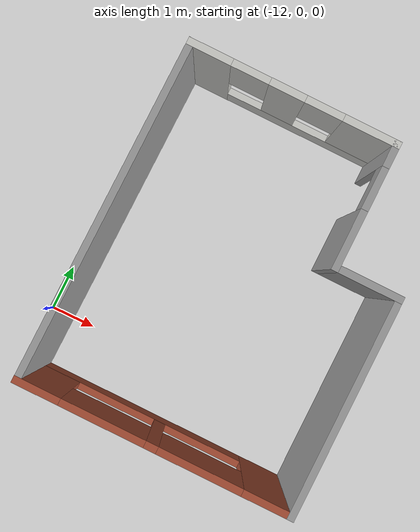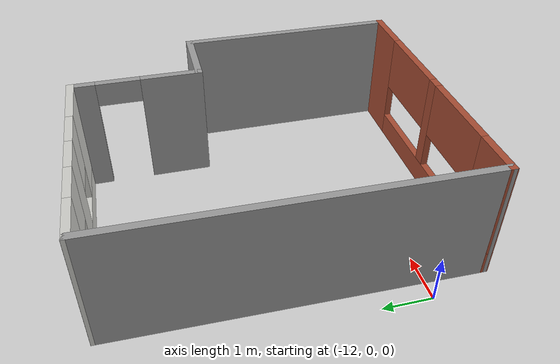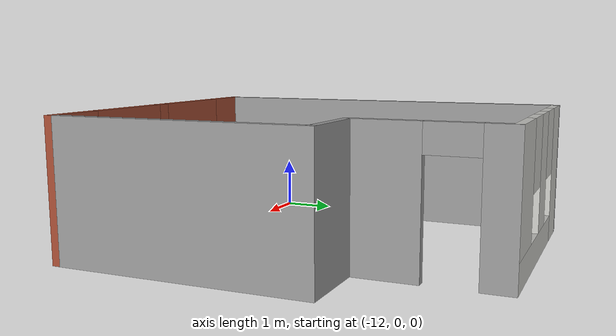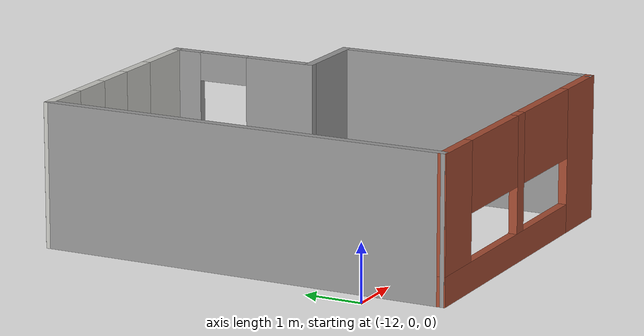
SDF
<?xml version='1.0'?>
<sdf version='1.6'>
  <model name='Building'>
    <pose frame=''>-8.66418 2.3858 0 0 -0 0</pose>
    <link name='Wall_1'>
      <pose frame=''>-0.616625 3.5994 0 0 -0 0</pose>
      <visual name='Wall_1_Visual_0'>
        <pose frame=''>-1.77601 0 1.25 0 -0 0</pose>
        <geometry>
          <box>
            <size>0.947972 0.15 2.5</size>
          </box>
        </geometry>
        <material>
          <script>
            <uri>file://media/materials/scripts/gazebo.material</uri>
            <name>Gazebo/CeilingTiled</name>
          </script>
          <ambient>1 0.976471 0.964706 1</ambient>
        </material>
        <meta>
          <layer>0</layer>
        </meta>
      </visual>
      <collision name='Wall_1_Collision_0'>
        <geometry>
          <box>
            <size>0.947972 0.15 2.5</size>
          </box>
        </geometry>
        <pose frame=''>-1.77601 0 1.25 0 -0 0</pose>
      </collision>
      <visual name='Wall_1_Visual_1'>
        <pose frame=''>0.473986 0 0.25 0 -0 0</pose>
        <geometry>
          <box>
            <size>3.55203 0.15 0.5</size>
          </box>
        </geometry>
        <material>
          <script>
            <uri>file://media/materials/scripts/gazebo.material</uri>
            <name>Gazebo/CeilingTiled</name>
          </script>
          <ambient>1 0.976471 0.964706 1</ambient>
        </material>
        <meta>
          <layer>0</layer>
        </meta>
      </visual>
      <collision name='Wall_1_Collision_1'>
        <geometry>
          <box>
            <size>3.55203 0.15 0.5</size>
          </box>
        </geometry>
        <pose frame=''>0.473986 0 0.25 0 -0 0</pose>
      </collision>
      <visual name='Wall_1_Visual_2'>
        <pose frame=''>-0.123721 0 1.5 0 -0 0</pose>
        <geometry>
          <box>
            <size>0.756615 0.15 2</size>
          </box>
        </geometry>
        <material>
          <script>
            <uri>file://media/materials/scripts/gazebo.material</uri>
            <name>Gazebo/CeilingTiled</name>
          </script>
          <ambient>1 0.976471 0.964706 1</ambient>
        </material>
        <meta>
          <layer>0</layer>
        </meta>
      </visual>
      <collision name='Wall_1_Collision_2'>
        <geometry>
          <box>
            <size>0.756615 0.15 2</size>
          </box>
        </geometry>
        <pose frame=''>-0.123721 0 1.5 0 -0 0</pose>
      </collision>
      <visual name='Wall_1_Visual_3'>
        <pose frame=''>1.65229 0 1.5 0 -0 0</pose>
        <geometry>
          <box>
            <size>1.19541 0.15 2</size>
          </box>
        </geometry>
        <material>
          <script>
            <uri>file://media/materials/scripts/gazebo.material</uri>
            <name>Gazebo/CeilingTiled</name>
          </script>
          <ambient>1 0.976471 0.964706 1</ambient>
        </material>
        <meta>
          <layer>0</layer>
        </meta>
      </visual>
      <collision name='Wall_1_Collision_3'>
        <geometry>
          <box>
            <size>1.19541 0.15 2</size>
          </box>
        </geometry>
        <pose frame=''>1.65229 0 1.5 0 -0 0</pose>
      </collision>
      <visual name='Wall_1_Visual_4'>
        <pose frame=''>-0.902028 0 1.9 0 -0 0</pose>
        <geometry>
          <box>
            <size>0.8 0.15 1.2</size>
          </box>
        </geometry>
        <material>
          <script>
            <uri>file://media/materials/scripts/gazebo.material</uri>
            <name>Gazebo/CeilingTiled</name>
          </script>
          <ambient>1 0.976471 0.964706 1</ambient>
        </material>
        <meta>
          <layer>0</layer>
        </meta>
      </visual>
      <collision name='Wall_1_Collision_4'>
        <geometry>
          <box>
            <size>0.8 0.15 1.2</size>
          </box>
        </geometry>
        <pose frame=''>-0.902028 0 1.9 0 -0 0</pose>
      </collision>
      <visual name='Wall_1_Visual_5'>
        <pose frame=''>0.654587 0 1.9 0 -0 0</pose>
        <geometry>
          <box>
            <size>0.8 0.15 1.2</size>
          </box>
        </geometry>
        <material>
          <script>
            <uri>file://media/materials/scripts/gazebo.material</uri>
            <name>Gazebo/CeilingTiled</name>
          </script>
          <ambient>1 0.976471 0.964706 1</ambient>
        </material>
        <meta>
          <layer>0</layer>
        </meta>
      </visual>
      <collision name='Wall_1_Collision_5'>
        <geometry>
          <box>
            <size>0.8 0.15 1.2</size>
          </box>
        </geometry>
        <pose frame=''>0.654587 0 1.9 0 -0 0</pose>
      </collision>
    </link>
    <link name='Wall_2'>
      <pose frame=''>1.55838 2.2994 0 0 0 -1.5708</pose>
      <visual name='Wall_2_Visual_0'>
        <pose frame=''>-1.09219 0 1.25 0 -0 0</pose>
        <geometry>
          <box>
            <size>0.565614 0.15 2.5</size>
          </box>
        </geometry>
        <material>
          <script>
            <uri>file://media/materials/scripts/gazebo.material</uri>
            <name>Gazebo/Grey</name>
          </script>
          <ambient>1 0.976471 0.964706 1</ambient>
        </material>
        <meta>
          <layer>0</layer>
        </meta>
      </visual>
      <collision name='Wall_2_Collision_0'>
        <geometry>
          <box>
            <size>0.565614 0.15 2.5</size>
          </box>
        </geometry>
        <pose frame=''>-1.09219 0 1.25 0 -0 0</pose>
      </collision>
      <visual name='Wall_2_Visual_1'>
        <pose frame=''>0.732807 0 1.25 0 -0 0</pose>
        <geometry>
          <box>
            <size>1.28439 0.15 2.5</size>
          </box>
        </geometry>
        <material>
          <script>
            <uri>file://media/materials/scripts/gazebo.material</uri>
            <name>Gazebo/Grey</name>
          </script>
          <ambient>1 0.976471 0.964706 1</ambient>
        </material>
        <meta>
          <layer>0</layer>
        </meta>
      </visual>
      <collision name='Wall_2_Collision_1'>
        <geometry>
          <box>
            <size>1.28439 0.15 2.5</size>
          </box>
        </geometry>
        <pose frame=''>0.732807 0 1.25 0 -0 0</pose>
      </collision>
      <visual name='Wall_2_Visual_2'>
        <pose frame=''>-0.359386 0 2.25 0 -0 0</pose>
        <geometry>
          <box>
            <size>0.9 0.15 0.5</size>
          </box>
        </geometry>
        <material>
          <script>
            <uri>file://media/materials/scripts/gazebo.material</uri>
            <name>Gazebo/Grey</name>
          </script>
          <ambient>1 0.976471 0.964706 1</ambient>
        </material>
        <meta>
          <layer>0</layer>
        </meta>
      </visual>
      <collision name='Wall_2_Collision_2'>
        <geometry>
          <box>
            <size>0.9 0.15 0.5</size>
          </box>
        </geometry>
        <pose frame=''>-0.359386 0 2.25 0 -0 0</pose>
      </collision>
    </link>
    <link name='Wall_3'>
      <collision name='Wall_3_Collision'>
        <geometry>
          <box>
            <size>1.5 0.15 2.5</size>
          </box>
        </geometry>
        <pose frame=''>0 0 1.25 0 -0 0</pose>
      </collision>
      <visual name='Wall_3_Visual'>
        <pose frame=''>0 0 1.25 0 -0 0</pose>
        <geometry>
          <box>
            <size>1.5 0.15 2.5</size>
          </box>
        </geometry>
        <material>
          <script>
            <uri>file://media/materials/scripts/gazebo.material</uri>
            <name>Gazebo/Grey</name>
          </script>
          <ambient>1 0.976471 0.964706 1</ambient>
        </material>
        <meta>
          <layer>0</layer>
        </meta>
      </visual>
      <pose frame=''>2.23338 0.999402 0 0 -0 0</pose>
    </link>
    <link name='Wall_4'>
      <collision name='Wall_4_Collision'>
        <geometry>
          <box>
            <size>4.75 0.15 2.5</size>
          </box>
        </geometry>
        <pose frame=''>0 0 1.25 0 -0 0</pose>
      </collision>
      <visual name='Wall_4_Visual'>
        <pose frame=''>0 0 1.25 0 -0 0</pose>
        <geometry>
          <box>
            <size>4.75 0.15 2.5</size>
          </box>
        </geometry>
        <material>
          <script>
            <uri>file://media/materials/scripts/gazebo.material</uri>
            <name>Gazebo/Grey</name>
          </script>
          <ambient>1 0.976471 0.964706 1</ambient>
        </material>
        <meta>
          <layer>0</layer>
        </meta>
      </visual>
      <pose frame=''>2.90838 -1.3006 0 0 0 -1.5708</pose>
    </link>
    <link name='Wall_5'>
      <pose frame=''>0.00059 -3.6006 0 0 -0 3.14159</pose>
      <visual name='Wall_5_Visual_0'>
        <pose frame=''>-2.42357 0 1.25 0 -0 0</pose>
        <geometry>
          <box>
            <size>1.11846 0.15 2.5</size>
          </box>
        </geometry>
        <material>
          <script>
            <uri>file://media/materials/scripts/gazebo.material</uri>
            <name>Gazebo/Bricks</name>
          </script>
          <ambient>1 1 1 1</ambient>
        </material>
        <meta>
          <layer>0</layer>
        </meta>
      </visual>
      <collision name='Wall_5_Collision_0'>
        <geometry>
          <box>
            <size>1.11846 0.15 2.5</size>
          </box>
        </geometry>
        <pose frame=''>-2.42357 0 1.25 0 -0 0</pose>
      </collision>
      <visual name='Wall_5_Visual_1'>
        <pose frame=''>0.559229 0 0.25 0 -0 0</pose>
        <geometry>
          <box>
            <size>4.84715 0.15 0.5</size>
          </box>
        </geometry>
        <material>
          <script>
            <uri>file://media/materials/scripts/gazebo.material</uri>
            <name>Gazebo/Bricks</name>
          </script>
          <ambient>1 1 1 1</ambient>
        </material>
        <meta>
          <layer>0</layer>
        </meta>
      </visual>
      <collision name='Wall_5_Collision_1'>
        <geometry>
          <box>
            <size>4.84715 0.15 0.5</size>
          </box>
        </geometry>
        <pose frame=''>0.559229 0 0.25 0 -0 0</pose>
      </collision>
      <visual name='Wall_5_Visual_2'>
        <pose frame=''>0.067569 0 1.5 0 -0 0</pose>
        <geometry>
          <box>
            <size>0.263828 0.15 2</size>
          </box>
        </geometry>
        <material>
          <script>
            <uri>file://media/materials/scripts/gazebo.material</uri>
            <name>Gazebo/Bricks</name>
          </script>
          <ambient>1 1 1 1</ambient>
        </material>
        <meta>
          <layer>0</layer>
        </meta>
      </visual>
      <collision name='Wall_5_Collision_2'>
        <geometry>
          <box>
            <size>0.263828 0.15 2</size>
          </box>
        </geometry>
        <pose frame=''>0.067569 0 1.5 0 -0 0</pose>
      </collision>
      <visual name='Wall_5_Visual_3'>
        <pose frame=''>2.49114 0 1.5 0 -0 0</pose>
        <geometry>
          <box>
            <size>0.98332 0.15 2</size>
          </box>
        </geometry>
        <material>
          <script>
            <uri>file://media/materials/scripts/gazebo.material</uri>
            <name>Gazebo/Bricks</name>
          </script>
          <ambient>1 1 1 1</ambient>
        </material>
        <meta>
          <layer>0</layer>
        </meta>
      </visual>
      <collision name='Wall_5_Collision_3'>
        <geometry>
          <box>
            <size>0.98332 0.15 2</size>
          </box>
        </geometry>
        <pose frame=''>2.49114 0 1.5 0 -0 0</pose>
      </collision>
      <visual name='Wall_5_Visual_4'>
        <pose frame=''>-0.964345 0 1.9 0 -0 0</pose>
        <geometry>
          <box>
            <size>1.8 0.15 1.2</size>
          </box>
        </geometry>
        <material>
          <script>
            <uri>file://media/materials/scripts/gazebo.material</uri>
            <name>Gazebo/Bricks</name>
          </script>
          <ambient>1 1 1 1</ambient>
        </material>
        <meta>
          <layer>0</layer>
        </meta>
      </visual>
      <collision name='Wall_5_Collision_4'>
        <geometry>
          <box>
            <size>1.8 0.15 1.2</size>
          </box>
        </geometry>
        <pose frame=''>-0.964345 0 1.9 0 -0 0</pose>
      </collision>
      <visual name='Wall_5_Visual_5'>
        <pose frame=''>1.09948 0 1.9 0 -0 0</pose>
        <geometry>
          <box>
            <size>1.8 0.15 1.2</size>
          </box>
        </geometry>
        <material>
          <script>
            <uri>file://media/materials/scripts/gazebo.material</uri>
            <name>Gazebo/Bricks</name>
          </script>
          <ambient>1 1 1 1</ambient>
        </material>
        <meta>
          <layer>0</layer>
        </meta>
      </visual>
      <collision name='Wall_5_Collision_5'>
        <geometry>
          <box>
            <size>1.8 0.15 1.2</size>
          </box>
        </geometry>
        <pose frame=''>1.09948 0 1.9 0 -0 0</pose>
      </collision>
    </link>
    <link name='Wall_6'>
      <collision name='Wall_6_Collision'>
        <geometry>
          <box>
            <size>7.33082 0.15 2.5</size>
          </box>
        </geometry>
        <pose frame=''>0 0 1.25 0 -0 0</pose>
      </collision>
      <visual name='Wall_6_Visual'>
        <pose frame=''>0 0 1.25 0 -0 0</pose>
        <geometry>
          <box>
            <size>7.33082 0.15 2.5</size>
          </box>
        </geometry>
        <material>
          <script>
            <uri>file://media/materials/scripts/gazebo.material</uri>
            <name>Gazebo/Grey</name>
          </script>
          <ambient>1 0.976471 0.964706 1</ambient>
        </material>
        <meta>
          <layer>0</layer>
        </meta>
      </visual>
      <pose frame=''>-2.84941 0.009458 0 0 -0 1.5547</pose>
    </link>
    <static>1</static>
  </model>
</sdf>
